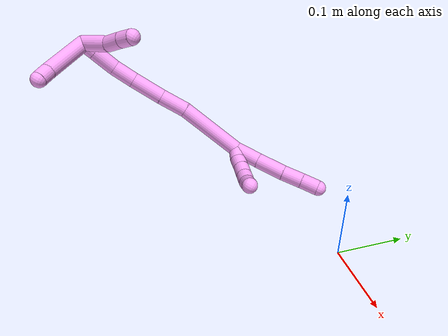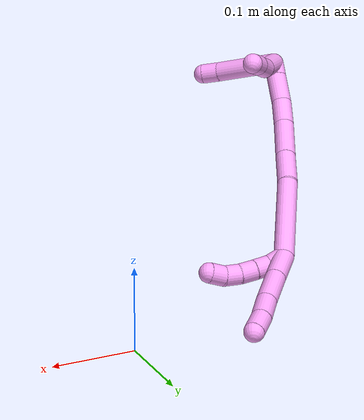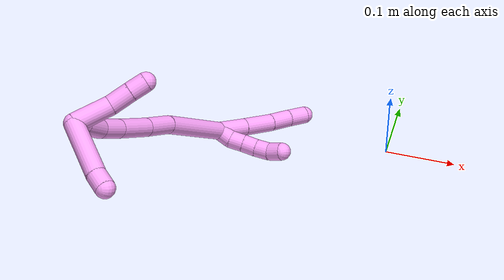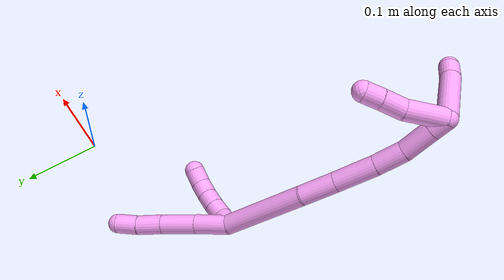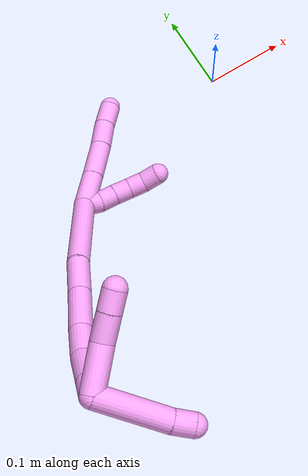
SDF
<sdf version="1.7">
 <world name="default">
  <model name="4">
   <static>0</static>
   <link name="4">
    <collision name="collision-cylinder-e_1_2_8">
     <pose>2.7e-05 0.005183 -0.02058 -2.89486 0.001255 -0.010118</pose>
     <geometry><cylinder><radius>0.0125</radius><length>0.042446</length></cylinder></geometry>
     <surface>
      <friction><ode><mu>1.16</mu><mu2>1.16</mu2><slip1>0</slip1><slip2>0</slip2></ode></friction>
      <contact><ode><kp>1e+06</kp><kd>1</kd><max_vel>0</max_vel><min_depth>0.001</min_depth></ode></contact>
     </surface>
    </collision>
    <visual name="visual-cylinder-e_1_2_8">
     <pose>2.7e-05 0.005183 -0.02058 -2.89486 0.001255 -0.010118</pose>
     <geometry><cylinder><radius>0.0125</radius><length>0.042446</length></cylinder></geometry>
     <material><ambient>1 0.65098 0.996078 1</ambient></material>
    </visual>
    <collision name="collision-cylinder-e_2_8_9">
     <pose>-0.000276 0.015852 -0.063471 -2.90055 -0.014315 0.118068</pose>
     <geometry><cylinder><radius>0.0125</radius><length>0.045955</length></cylinder></geometry>
     <surface>
      <friction><ode><mu>1.16</mu><mu2>1.16</mu2><slip1>0</slip1><slip2>0</slip2></ode></friction>
      <contact><ode><kp>1e+06</kp><kd>1</kd><max_vel>0</max_vel><min_depth>0.001</min_depth></ode></contact>
     </surface>
    </collision>
    <visual name="visual-cylinder-e_2_8_9">
     <pose>-0.000276 0.015852 -0.063471 -2.90055 -0.014315 0.118068</pose>
     <geometry><cylinder><radius>0.0125</radius><length>0.045955</length></cylinder></geometry>
     <material><ambient>1 0.65098 0.996078 1</ambient></material>
    </visual>
    <collision name="collision-cylinder-e_3_9_10">
     <pose>-0.001887 0.025049 -0.101867 -2.91473 -0.077554 0.656467</pose>
     <geometry><cylinder><radius>0.0125</radius><length>0.033116</length></cylinder></geometry>
     <surface>
      <friction><ode><mu>1.16</mu><mu2>1.16</mu2><slip1>0</slip1><slip2>0</slip2></ode></friction>
      <contact><ode><kp>1e+06</kp><kd>1</kd><max_vel>0</max_vel><min_depth>0.001</min_depth></ode></contact>
     </surface>
    </collision>
    <visual name="visual-cylinder-e_3_9_10">
     <pose>-0.001887 0.025049 -0.101867 -2.91473 -0.077554 0.656467</pose>
     <geometry><cylinder><radius>0.0125</radius><length>0.033116</length></cylinder></geometry>
     <material><ambient>1 0.65098 0.996078 1</ambient></material>
    </visual>
    <collision name="collision-cylinder-e_4_10_6">
     <pose>-0.00368 0.03339 -0.131412 -2.81043 -0.03578 0.213319</pose>
     <geometry><cylinder><radius>0.0125</radius><length>0.028483</length></cylinder></geometry>
     <surface>
      <friction><ode><mu>1.16</mu><mu2>1.16</mu2><slip1>0</slip1><slip2>0</slip2></ode></friction>
      <contact><ode><kp>1e+06</kp><kd>1</kd><max_vel>0</max_vel><min_depth>0.001</min_depth></ode></contact>
     </surface>
    </collision>
    <visual name="visual-cylinder-e_4_10_6">
     <pose>-0.00368 0.03339 -0.131412 -2.81043 -0.03578 0.213319</pose>
     <geometry><cylinder><radius>0.0125</radius><length>0.028483</length></cylinder></geometry>
     <material><ambient>1 0.65098 0.996078 1</ambient></material>
    </visual>
    <collision name="collision-cylinder-e_1_2_11">
     <pose>0.007597 0.004076 -0.005067 -2.46426 0.862819 -1.8353</pose>
     <geometry><cylinder><radius>0.0125</radius><length>0.02</length></cylinder></geometry>
     <surface>
      <friction><ode><mu>1.16</mu><mu2>1.16</mu2><slip1>0</slip1><slip2>0</slip2></ode></friction>
      <contact><ode><kp>1e+06</kp><kd>1</kd><max_vel>0</max_vel><min_depth>0.001</min_depth></ode></contact>
     </surface>
    </collision>
    <visual name="visual-cylinder-e_1_2_11">
     <pose>0.007597 0.004076 -0.005067 -2.46426 0.862819 -1.8353</pose>
     <geometry><cylinder><radius>0.0125</radius><length>0.02</length></cylinder></geometry>
     <material><ambient>1 0.65098 0.996078 1</ambient></material>
    </visual>
    <collision name="collision-cylinder-e_2_11_12">
     <pose>0.020565 0.014797 -0.015328 -2.2341 0.567079 -1.07716</pose>
     <geometry><cylinder><radius>0.0125</radius><length>0.02</length></cylinder></geometry>
     <surface>
      <friction><ode><mu>1.16</mu><mu2>1.16</mu2><slip1>0</slip1><slip2>0</slip2></ode></friction>
      <contact><ode><kp>1e+06</kp><kd>1</kd><max_vel>0</max_vel><min_depth>0.001</min_depth></ode></contact>
     </surface>
    </collision>
    <visual name="visual-cylinder-e_2_11_12">
     <pose>0.020565 0.014797 -0.015328 -2.2341 0.567079 -1.07716</pose>
     <geometry><cylinder><radius>0.0125</radius><length>0.02</length></cylinder></geometry>
     <material><ambient>1 0.65098 0.996078 1</ambient></material>
    </visual>
    <collision name="collision-cylinder-e_3_12_13">
     <pose>0.031581 0.028203 -0.025262 -2.18238 0.599649 -1.07255</pose>
     <geometry><cylinder><radius>0.0125</radius><length>0.02</length></cylinder></geometry>
     <surface>
      <friction><ode><mu>1.16</mu><mu2>1.16</mu2><slip1>0</slip1><slip2>0</slip2></ode></friction>
      <contact><ode><kp>1e+06</kp><kd>1</kd><max_vel>0</max_vel><min_depth>0.001</min_depth></ode></contact>
     </surface>
    </collision>
    <visual name="visual-cylinder-e_3_12_13">
     <pose>0.031581 0.028203 -0.025262 -2.18238 0.599649 -1.07255</pose>
     <geometry><cylinder><radius>0.0125</radius><length>0.02</length></cylinder></geometry>
     <material><ambient>1 0.65098 0.996078 1</ambient></material>
    </visual>
    <collision name="collision-cylinder-e_4_13_14">
     <pose>0.042199 0.042729 -0.033864 -2.03223 0.520747 -0.81222</pose>
     <geometry><cylinder><radius>0.0125</radius><length>0.02</length></cylinder></geometry>
     <surface>
      <friction><ode><mu>1.16</mu><mu2>1.16</mu2><slip1>0</slip1><slip2>0</slip2></ode></friction>
      <contact><ode><kp>1e+06</kp><kd>1</kd><max_vel>0</max_vel><min_depth>0.001</min_depth></ode></contact>
     </surface>
    </collision>
    <visual name="visual-cylinder-e_4_13_14">
     <pose>0.042199 0.042729 -0.033864 -2.03223 0.520747 -0.81222</pose>
     <geometry><cylinder><radius>0.0125</radius><length>0.02</length></cylinder></geometry>
     <material><ambient>1 0.65098 0.996078 1</ambient></material>
    </visual>
    <collision name="collision-cylinder-e_5_14_5">
     <pose>0.049772 0.059895 -0.039942 -1.80231 0.262769 -0.33079</pose>
     <geometry><cylinder><radius>0.0125</radius><length>0.02</length></cylinder></geometry>
     <surface>
      <friction><ode><mu>1.16</mu><mu2>1.16</mu2><slip1>0</slip1><slip2>0</slip2></ode></friction>
      <contact><ode><kp>1e+06</kp><kd>1</kd><max_vel>0</max_vel><min_depth>0.001</min_depth></ode></contact>
     </surface>
    </collision>
    <visual name="visual-cylinder-e_5_14_5">
     <pose>0.049772 0.059895 -0.039942 -1.80231 0.262769 -0.33079</pose>
     <geometry><cylinder><radius>0.0125</radius><length>0.02</length></cylinder></geometry>
     <material><ambient>1 0.65098 0.996078 1</ambient></material>
    </visual>
    <collision name="collision-cylinder-e_1_2_15">
     <pose>-0.005922 0.007623 0.05306 -0.142684 -0.110027 0.007871</pose>
     <geometry><cylinder><radius>0.0125</radius><length>0.107861</length></cylinder></geometry>
     <surface>
      <friction><ode><mu>1.16</mu><mu2>1.16</mu2><slip1>0</slip1><slip2>0</slip2></ode></friction>
      <contact><ode><kp>1e+06</kp><kd>1</kd><max_vel>0</max_vel><min_depth>0.001</min_depth></ode></contact>
     </surface>
    </collision>
    <visual name="visual-cylinder-e_1_2_15">
     <pose>-0.005922 0.007623 0.05306 -0.142684 -0.110027 0.007871</pose>
     <geometry><cylinder><radius>0.0125</radius><length>0.107861</length></cylinder></geometry>
     <material><ambient>1 0.65098 0.996078 1</ambient></material>
    </visual>
    <collision name="collision-cylinder-e_2_15_16">
     <pose>-0.010768 0.017857 0.12814 -0.118058 0.048457 -0.002864</pose>
     <geometry><cylinder><radius>0.0125</radius><length>0.044403</length></cylinder></geometry>
     <surface>
      <friction><ode><mu>1.16</mu><mu2>1.16</mu2><slip1>0</slip1><slip2>0</slip2></ode></friction>
      <contact><ode><kp>1e+06</kp><kd>1</kd><max_vel>0</max_vel><min_depth>0.001</min_depth></ode></contact>
     </surface>
    </collision>
    <visual name="visual-cylinder-e_2_15_16">
     <pose>-0.010768 0.017857 0.12814 -0.118058 0.048457 -0.002864</pose>
     <geometry><cylinder><radius>0.0125</radius><length>0.044403</length></cylinder></geometry>
     <material><ambient>1 0.65098 0.996078 1</ambient></material>
    </visual>
    <collision name="collision-cylinder-e_3_16_17">
     <pose>-0.009463 0.024104 0.175829 -0.140678 0.008881 -0.000626</pose>
     <geometry><cylinder><radius>0.0125</radius><length>0.05185</length></cylinder></geometry>
     <surface>
      <friction><ode><mu>1.16</mu><mu2>1.16</mu2><slip1>0</slip1><slip2>0</slip2></ode></friction>
      <contact><ode><kp>1e+06</kp><kd>1</kd><max_vel>0</max_vel><min_depth>0.001</min_depth></ode></contact>
     </surface>
    </collision>
    <visual name="visual-cylinder-e_3_16_17">
     <pose>-0.009463 0.024104 0.175829 -0.140678 0.008881 -0.000626</pose>
     <geometry><cylinder><radius>0.0125</radius><length>0.05185</length></cylinder></geometry>
     <material><ambient>1 0.65098 0.996078 1</ambient></material>
    </visual>
    <collision name="collision-cylinder-e_4_17_18">
     <pose>-0.009357 0.031534 0.219216 -0.210997 -0.006873 0.000728</pose>
     <geometry><cylinder><radius>0.0125</radius><length>0.036243</length></cylinder></geometry>
     <surface>
      <friction><ode><mu>1.16</mu><mu2>1.16</mu2><slip1>0</slip1><slip2>0</slip2></ode></friction>
      <contact><ode><kp>1e+06</kp><kd>1</kd><max_vel>0</max_vel><min_depth>0.001</min_depth></ode></contact>
     </surface>
    </collision>
    <visual name="visual-cylinder-e_4_17_18">
     <pose>-0.009357 0.031534 0.219216 -0.210997 -0.006873 0.000728</pose>
     <geometry><cylinder><radius>0.0125</radius><length>0.036243</length></cylinder></geometry>
     <material><ambient>1 0.65098 0.996078 1</ambient></material>
    </visual>
    <collision name="collision-cylinder-e_5_18_19">
     <pose>-0.010815 0.042907 0.254609 -0.405026 -0.069213 0.014217</pose>
     <geometry><cylinder><radius>0.0125</radius><length>0.038553</length></cylinder></geometry>
     <surface>
      <friction><ode><mu>1.16</mu><mu2>1.16</mu2><slip1>0</slip1><slip2>0</slip2></ode></friction>
      <contact><ode><kp>1e+06</kp><kd>1</kd><max_vel>0</max_vel><min_depth>0.001</min_depth></ode></contact>
     </surface>
    </collision>
    <visual name="visual-cylinder-e_5_18_19">
     <pose>-0.010815 0.042907 0.254609 -0.405026 -0.069213 0.014217</pose>
     <geometry><cylinder><radius>0.0125</radius><length>0.038553</length></cylinder></geometry>
     <material><ambient>1 0.65098 0.996078 1</ambient></material>
    </visual>
    <collision name="collision-cylinder-e_6_19_1">
     <pose>-0.012875 0.054495 0.282009 -0.391174 -0.069009 0.013677</pose>
     <geometry><cylinder><radius>0.0125</radius><length>0.021091</length></cylinder></geometry>
     <surface>
      <friction><ode><mu>1.16</mu><mu2>1.16</mu2><slip1>0</slip1><slip2>0</slip2></ode></friction>
      <contact><ode><kp>1e+06</kp><kd>1</kd><max_vel>0</max_vel><min_depth>0.001</min_depth></ode></contact>
     </surface>
    </collision>
    <visual name="visual-cylinder-e_6_19_1">
     <pose>-0.012875 0.054495 0.282009 -0.391174 -0.069009 0.013677</pose>
     <geometry><cylinder><radius>0.0125</radius><length>0.021091</length></cylinder></geometry>
     <material><ambient>1 0.65098 0.996078 1</ambient></material>
    </visual>
    <collision name="collision-cylinder-e_1_1_20">
     <pose>-0.019963 0.070859 0.271671 -2.58973 -0.263685 0.875997</pose>
     <geometry><cylinder><radius>0.0125</radius><length>0.048812</length></cylinder></geometry>
     <surface>
      <friction><ode><mu>1.16</mu><mu2>1.16</mu2><slip1>0</slip1><slip2>0</slip2></ode></friction>
      <contact><ode><kp>1e+06</kp><kd>1</kd><max_vel>0</max_vel><min_depth>0.001</min_depth></ode></contact>
     </surface>
    </collision>
    <visual name="visual-cylinder-e_1_1_20">
     <pose>-0.019963 0.070859 0.271671 -2.58973 -0.263685 0.875997</pose>
     <geometry><cylinder><radius>0.0125</radius><length>0.048812</length></cylinder></geometry>
     <material><ambient>1 0.65098 0.996078 1</ambient></material>
    </visual>
    <collision name="collision-cylinder-e_2_20_21">
     <pose>-0.031529 0.093004 0.242259 -2.33298 -0.367085 0.818667</pose>
     <geometry><cylinder><radius>0.0125</radius><length>0.029006</length></cylinder></geometry>
     <surface>
      <friction><ode><mu>1.16</mu><mu2>1.16</mu2><slip1>0</slip1><slip2>0</slip2></ode></friction>
      <contact><ode><kp>1e+06</kp><kd>1</kd><max_vel>0</max_vel><min_depth>0.001</min_depth></ode></contact>
     </surface>
    </collision>
    <visual name="visual-cylinder-e_2_20_21">
     <pose>-0.031529 0.093004 0.242259 -2.33298 -0.367085 0.818667</pose>
     <geometry><cylinder><radius>0.0125</radius><length>0.029006</length></cylinder></geometry>
     <material><ambient>1 0.65098 0.996078 1</ambient></material>
    </visual>
    <collision name="collision-cylinder-e_3_21_4">
     <pose>-0.040474 0.110092 0.225443 -2.36787 -0.34394 0.806009</pose>
     <geometry><cylinder><radius>0.0125</radius><length>0.022183</length></cylinder></geometry>
     <surface>
      <friction><ode><mu>1.16</mu><mu2>1.16</mu2><slip1>0</slip1><slip2>0</slip2></ode></friction>
      <contact><ode><kp>1e+06</kp><kd>1</kd><max_vel>0</max_vel><min_depth>0.001</min_depth></ode></contact>
     </surface>
    </collision>
    <visual name="visual-cylinder-e_3_21_4">
     <pose>-0.040474 0.110092 0.225443 -2.36787 -0.34394 0.806009</pose>
     <geometry><cylinder><radius>0.0125</radius><length>0.022183</length></cylinder></geometry>
     <material><ambient>1 0.65098 0.996078 1</ambient></material>
    </visual>
    <collision name="collision-cylinder-e_1_1_22">
     <pose>0.021559 0.074853 0.296529 -1.2855 1.11964 -0.87755</pose>
     <geometry><cylinder><radius>0.0125</radius><length>0.078141</length></cylinder></geometry>
     <surface>
      <friction><ode><mu>1.16</mu><mu2>1.16</mu2><slip1>0</slip1><slip2>0</slip2></ode></friction>
      <contact><ode><kp>1e+06</kp><kd>1</kd><max_vel>0</max_vel><min_depth>0.001</min_depth></ode></contact>
     </surface>
    </collision>
    <visual name="visual-cylinder-e_1_1_22">
     <pose>0.021559 0.074853 0.296529 -1.2855 1.11964 -0.87755</pose>
     <geometry><cylinder><radius>0.0125</radius><length>0.078141</length></cylinder></geometry>
     <material><ambient>1 0.65098 0.996078 1</ambient></material>
    </visual>
    <collision name="collision-cylinder-e_2_22_3">
     <pose>0.066069 0.096849 0.301691 -1.50599 1.02629 -0.971768</pose>
     <geometry><cylinder><radius>0.0125</radius><length>0.021859</length></cylinder></geometry>
     <surface>
      <friction><ode><mu>1.16</mu><mu2>1.16</mu2><slip1>0</slip1><slip2>0</slip2></ode></friction>
      <contact><ode><kp>1e+06</kp><kd>1</kd><max_vel>0</max_vel><min_depth>0.001</min_depth></ode></contact>
     </surface>
    </collision>
    <visual name="visual-cylinder-e_2_22_3">
     <pose>0.066069 0.096849 0.301691 -1.50599 1.02629 -0.971768</pose>
     <geometry><cylinder><radius>0.0125</radius><length>0.021859</length></cylinder></geometry>
     <material><ambient>1 0.65098 0.996078 1</ambient></material>
    </visual>
    <collision name="collision-sphere-3">
     <pose>0.075418 0.102498 0.302057 0 -0 0</pose>
     <geometry><sphere><radius>0.0125</radius></sphere></geometry>
     <surface>
      <friction><ode><mu>1.16</mu><mu2>1.16</mu2><slip1>0</slip1><slip2>0</slip2></ode></friction>
      <contact><ode><kp>1e+06</kp><kd>1</kd><max_vel>0</max_vel><min_depth>0.001</min_depth></ode></contact>
     </surface>
    </collision>
    <visual name="visual-sphere-3">
     <pose>0.075418 0.102498 0.302057 0 -0 0</pose>
     <geometry><sphere><radius>0.0125</radius></sphere></geometry>
     <material><ambient>1 0.65098 0.996078 1</ambient></material>
    </visual>
    <collision name="collision-sphere-22">
     <pose>0.05672 0.091199 0.301324 0 -0 0</pose>
     <geometry><sphere><radius>0.0125</radius></sphere></geometry>
     <surface>
      <friction><ode><mu>1.16</mu><mu2>1.16</mu2><slip1>0</slip1><slip2>0</slip2></ode></friction>
      <contact><ode><kp>1e+06</kp><kd>1</kd><max_vel>0</max_vel><min_depth>0.001</min_depth></ode></contact>
     </surface>
    </collision>
    <visual name="visual-sphere-22">
     <pose>0.05672 0.091199 0.301324 0 -0 0</pose>
     <geometry><sphere><radius>0.0125</radius></sphere></geometry>
     <material><ambient>1 0.65098 0.996078 1</ambient></material>
    </visual>
    <collision name="collision-sphere-4">
     <pose>-0.044214 0.117389 0.217974 0 -0 0</pose>
     <geometry><sphere><radius>0.0125</radius></sphere></geometry>
     <surface>
      <friction><ode><mu>1.16</mu><mu2>1.16</mu2><slip1>0</slip1><slip2>0</slip2></ode></friction>
      <contact><ode><kp>1e+06</kp><kd>1</kd><max_vel>0</max_vel><min_depth>0.001</min_depth></ode></contact>
     </surface>
    </collision>
    <visual name="visual-sphere-4">
     <pose>-0.044214 0.117389 0.217974 0 -0 0</pose>
     <geometry><sphere><radius>0.0125</radius></sphere></geometry>
     <material><ambient>1 0.65098 0.996078 1</ambient></material>
    </visual>
    <collision name="collision-sphere-21">
     <pose>-0.036734 0.102796 0.232912 0 -0 0</pose>
     <geometry><sphere><radius>0.0125</radius></sphere></geometry>
     <surface>
      <friction><ode><mu>1.16</mu><mu2>1.16</mu2><slip1>0</slip1><slip2>0</slip2></ode></friction>
      <contact><ode><kp>1e+06</kp><kd>1</kd><max_vel>0</max_vel><min_depth>0.001</min_depth></ode></contact>
     </surface>
    </collision>
    <visual name="visual-sphere-21">
     <pose>-0.036734 0.102796 0.232912 0 -0 0</pose>
     <geometry><sphere><radius>0.0125</radius></sphere></geometry>
     <material><ambient>1 0.65098 0.996078 1</ambient></material>
    </visual>
    <collision name="collision-sphere-20">
     <pose>-0.026324 0.083213 0.251606 0 -0 0</pose>
     <geometry><sphere><radius>0.0125</radius></sphere></geometry>
     <surface>
      <friction><ode><mu>1.16</mu><mu2>1.16</mu2><slip1>0</slip1><slip2>0</slip2></ode></friction>
      <contact><ode><kp>1e+06</kp><kd>1</kd><max_vel>0</max_vel><min_depth>0.001</min_depth></ode></contact>
     </surface>
    </collision>
    <visual name="visual-sphere-20">
     <pose>-0.026324 0.083213 0.251606 0 -0 0</pose>
     <geometry><sphere><radius>0.0125</radius></sphere></geometry>
     <material><ambient>1 0.65098 0.996078 1</ambient></material>
    </visual>
    <collision name="collision-sphere-11">
     <pose>0.015194 0.008151 -0.010135 0 -0 0</pose>
     <geometry><sphere><radius>0.0125</radius></sphere></geometry>
     <surface>
      <friction><ode><mu>1.16</mu><mu2>1.16</mu2><slip1>0</slip1><slip2>0</slip2></ode></friction>
      <contact><ode><kp>1e+06</kp><kd>1</kd><max_vel>0</max_vel><min_depth>0.001</min_depth></ode></contact>
     </surface>
    </collision>
    <visual name="visual-sphere-11">
     <pose>0.015194 0.008151 -0.010135 0 -0 0</pose>
     <geometry><sphere><radius>0.0125</radius></sphere></geometry>
     <material><ambient>1 0.65098 0.996078 1</ambient></material>
    </visual>
    <collision name="collision-sphere-6">
     <pose>-0.004189 0.038018 -0.144871 0 -0 0</pose>
     <geometry><sphere><radius>0.0125</radius></sphere></geometry>
     <surface>
      <friction><ode><mu>1.16</mu><mu2>1.16</mu2><slip1>0</slip1><slip2>0</slip2></ode></friction>
      <contact><ode><kp>1e+06</kp><kd>1</kd><max_vel>0</max_vel><min_depth>0.001</min_depth></ode></contact>
     </surface>
    </collision>
    <visual name="visual-sphere-6">
     <pose>-0.004189 0.038018 -0.144871 0 -0 0</pose>
     <geometry><sphere><radius>0.0125</radius></sphere></geometry>
     <material><ambient>1 0.65098 0.996078 1</ambient></material>
    </visual>
    <collision name="collision-sphere-10">
     <pose>-0.00317 0.028762 -0.117953 0 -0 0</pose>
     <geometry><sphere><radius>0.0125</radius></sphere></geometry>
     <surface>
      <friction><ode><mu>1.16</mu><mu2>1.16</mu2><slip1>0</slip1><slip2>0</slip2></ode></friction>
      <contact><ode><kp>1e+06</kp><kd>1</kd><max_vel>0</max_vel><min_depth>0.001</min_depth></ode></contact>
     </surface>
    </collision>
    <visual name="visual-sphere-10">
     <pose>-0.00317 0.028762 -0.117953 0 -0 0</pose>
     <geometry><sphere><radius>0.0125</radius></sphere></geometry>
     <material><ambient>1 0.65098 0.996078 1</ambient></material>
    </visual>
    <collision name="collision-sphere-9">
     <pose>-0.000605 0.021336 -0.085782 0 -0 0</pose>
     <geometry><sphere><radius>0.0125</radius></sphere></geometry>
     <surface>
      <friction><ode><mu>1.16</mu><mu2>1.16</mu2><slip1>0</slip1><slip2>0</slip2></ode></friction>
      <contact><ode><kp>1e+06</kp><kd>1</kd><max_vel>0</max_vel><min_depth>0.001</min_depth></ode></contact>
     </surface>
    </collision>
    <visual name="visual-sphere-9">
     <pose>-0.000605 0.021336 -0.085782 0 -0 0</pose>
     <geometry><sphere><radius>0.0125</radius></sphere></geometry>
     <material><ambient>1 0.65098 0.996078 1</ambient></material>
    </visual>
    <collision name="collision-sphere-2">
     <geometry><sphere><radius>0.0125</radius></sphere></geometry>
     <surface>
      <friction><ode><mu>1.16</mu><mu2>1.16</mu2><slip1>0</slip1><slip2>0</slip2></ode></friction>
      <contact><ode><kp>1e+06</kp><kd>1</kd><max_vel>0</max_vel><min_depth>0.001</min_depth></ode></contact>
     </surface>
    </collision>
    <visual name="visual-sphere-2">
     <geometry><sphere><radius>0.0125</radius></sphere></geometry>
     <material><ambient>1 0.65098 0.996078 1</ambient></material>
    </visual>
    <collision name="collision-sphere-19">
     <pose>-0.012148 0.050484 0.272284 0 -0 0</pose>
     <geometry><sphere><radius>0.0125</radius></sphere></geometry>
     <surface>
      <friction><ode><mu>1.16</mu><mu2>1.16</mu2><slip1>0</slip1><slip2>0</slip2></ode></friction>
      <contact><ode><kp>1e+06</kp><kd>1</kd><max_vel>0</max_vel><min_depth>0.001</min_depth></ode></contact>
     </surface>
    </collision>
    <visual name="visual-sphere-19">
     <pose>-0.012148 0.050484 0.272284 0 -0 0</pose>
     <geometry><sphere><radius>0.0125</radius></sphere></geometry>
     <material><ambient>1 0.65098 0.996078 1</ambient></material>
    </visual>
    <collision name="collision-sphere-8">
     <pose>5.3e-05 0.010367 -0.04116 0 -0 0</pose>
     <geometry><sphere><radius>0.0125</radius></sphere></geometry>
     <surface>
      <friction><ode><mu>1.16</mu><mu2>1.16</mu2><slip1>0</slip1><slip2>0</slip2></ode></friction>
      <contact><ode><kp>1e+06</kp><kd>1</kd><max_vel>0</max_vel><min_depth>0.001</min_depth></ode></contact>
     </surface>
    </collision>
    <visual name="visual-sphere-8">
     <pose>5.3e-05 0.010367 -0.04116 0 -0 0</pose>
     <geometry><sphere><radius>0.0125</radius></sphere></geometry>
     <material><ambient>1 0.65098 0.996078 1</ambient></material>
    </visual>
    <collision name="collision-sphere-12">
     <pose>0.025937 0.021444 -0.020522 0 -0 0</pose>
     <geometry><sphere><radius>0.0125</radius></sphere></geometry>
     <surface>
      <friction><ode><mu>1.16</mu><mu2>1.16</mu2><slip1>0</slip1><slip2>0</slip2></ode></friction>
      <contact><ode><kp>1e+06</kp><kd>1</kd><max_vel>0</max_vel><min_depth>0.001</min_depth></ode></contact>
     </surface>
    </collision>
    <visual name="visual-sphere-12">
     <pose>0.025937 0.021444 -0.020522 0 -0 0</pose>
     <geometry><sphere><radius>0.0125</radius></sphere></geometry>
     <material><ambient>1 0.65098 0.996078 1</ambient></material>
    </visual>
    <collision name="collision-sphere-13">
     <pose>0.037224 0.034962 -0.030002 0 -0 0</pose>
     <geometry><sphere><radius>0.0125</radius></sphere></geometry>
     <surface>
      <friction><ode><mu>1.16</mu><mu2>1.16</mu2><slip1>0</slip1><slip2>0</slip2></ode></friction>
      <contact><ode><kp>1e+06</kp><kd>1</kd><max_vel>0</max_vel><min_depth>0.001</min_depth></ode></contact>
     </surface>
    </collision>
    <visual name="visual-sphere-13">
     <pose>0.037224 0.034962 -0.030002 0 -0 0</pose>
     <geometry><sphere><radius>0.0125</radius></sphere></geometry>
     <material><ambient>1 0.65098 0.996078 1</ambient></material>
    </visual>
    <collision name="collision-sphere-14">
     <pose>0.047175 0.050496 -0.037726 0 -0 0</pose>
     <geometry><sphere><radius>0.0125</radius></sphere></geometry>
     <surface>
      <friction><ode><mu>1.16</mu><mu2>1.16</mu2><slip1>0</slip1><slip2>0</slip2></ode></friction>
      <contact><ode><kp>1e+06</kp><kd>1</kd><max_vel>0</max_vel><min_depth>0.001</min_depth></ode></contact>
     </surface>
    </collision>
    <visual name="visual-sphere-14">
     <pose>0.047175 0.050496 -0.037726 0 -0 0</pose>
     <geometry><sphere><radius>0.0125</radius></sphere></geometry>
     <material><ambient>1 0.65098 0.996078 1</ambient></material>
    </visual>
    <collision name="collision-sphere-5">
     <pose>0.05237 0.069294 -0.042157 0 -0 0</pose>
     <geometry><sphere><radius>0.0125</radius></sphere></geometry>
     <surface>
      <friction><ode><mu>1.16</mu><mu2>1.16</mu2><slip1>0</slip1><slip2>0</slip2></ode></friction>
      <contact><ode><kp>1e+06</kp><kd>1</kd><max_vel>0</max_vel><min_depth>0.001</min_depth></ode></contact>
     </surface>
    </collision>
    <visual name="visual-sphere-5">
     <pose>0.05237 0.069294 -0.042157 0 -0 0</pose>
     <geometry><sphere><radius>0.0125</radius></sphere></geometry>
     <material><ambient>1 0.65098 0.996078 1</ambient></material>
    </visual>
    <collision name="collision-sphere-15">
     <pose>-0.011844 0.015245 0.106119 0 -0 0</pose>
     <geometry><sphere><radius>0.0125</radius></sphere></geometry>
     <surface>
      <friction><ode><mu>1.16</mu><mu2>1.16</mu2><slip1>0</slip1><slip2>0</slip2></ode></friction>
      <contact><ode><kp>1e+06</kp><kd>1</kd><max_vel>0</max_vel><min_depth>0.001</min_depth></ode></contact>
     </surface>
    </collision>
    <visual name="visual-sphere-15">
     <pose>-0.011844 0.015245 0.106119 0 -0 0</pose>
     <geometry><sphere><radius>0.0125</radius></sphere></geometry>
     <material><ambient>1 0.65098 0.996078 1</ambient></material>
    </visual>
    <collision name="collision-sphere-16">
     <pose>-0.009693 0.020469 0.150161 0 -0 0</pose>
     <geometry><sphere><radius>0.0125</radius></sphere></geometry>
     <surface>
      <friction><ode><mu>1.16</mu><mu2>1.16</mu2><slip1>0</slip1><slip2>0</slip2></ode></friction>
      <contact><ode><kp>1e+06</kp><kd>1</kd><max_vel>0</max_vel><min_depth>0.001</min_depth></ode></contact>
     </surface>
    </collision>
    <visual name="visual-sphere-16">
     <pose>-0.009693 0.020469 0.150161 0 -0 0</pose>
     <geometry><sphere><radius>0.0125</radius></sphere></geometry>
     <material><ambient>1 0.65098 0.996078 1</ambient></material>
    </visual>
    <collision name="collision-sphere-17">
     <pose>-0.009232 0.027739 0.201496 0 -0 0</pose>
     <geometry><sphere><radius>0.0125</radius></sphere></geometry>
     <surface>
      <friction><ode><mu>1.16</mu><mu2>1.16</mu2><slip1>0</slip1><slip2>0</slip2></ode></friction>
      <contact><ode><kp>1e+06</kp><kd>1</kd><max_vel>0</max_vel><min_depth>0.001</min_depth></ode></contact>
     </surface>
    </collision>
    <visual name="visual-sphere-17">
     <pose>-0.009232 0.027739 0.201496 0 -0 0</pose>
     <geometry><sphere><radius>0.0125</radius></sphere></geometry>
     <material><ambient>1 0.65098 0.996078 1</ambient></material>
    </visual>
    <collision name="collision-sphere-18">
     <pose>-0.009482 0.035329 0.236935 0 -0 0</pose>
     <geometry><sphere><radius>0.0125</radius></sphere></geometry>
     <surface>
      <friction><ode><mu>1.16</mu><mu2>1.16</mu2><slip1>0</slip1><slip2>0</slip2></ode></friction>
      <contact><ode><kp>1e+06</kp><kd>1</kd><max_vel>0</max_vel><min_depth>0.001</min_depth></ode></contact>
     </surface>
    </collision>
    <visual name="visual-sphere-18">
     <pose>-0.009482 0.035329 0.236935 0 -0 0</pose>
     <geometry><sphere><radius>0.0125</radius></sphere></geometry>
     <material><ambient>1 0.65098 0.996078 1</ambient></material>
    </visual>
    <collision name="collision-sphere-1">
     <pose>-0.013602 0.058506 0.291735 0 -0 0</pose>
     <geometry><sphere><radius>0.0125</radius></sphere></geometry>
     <surface>
      <friction><ode><mu>1.16</mu><mu2>1.16</mu2><slip1>0</slip1><slip2>0</slip2></ode></friction>
      <contact><ode><kp>1e+06</kp><kd>1</kd><max_vel>0</max_vel><min_depth>0.001</min_depth></ode></contact>
     </surface>
    </collision>
    <visual name="visual-sphere-1">
     <pose>-0.013602 0.058506 0.291735 0 -0 0</pose>
     <geometry><sphere><radius>0.0125</radius></sphere></geometry>
     <material><ambient>1 0.65098 0.996078 1</ambient></material>
    </visual>
    <inertial>
     <pose>0.00075 0.038799 0.114662 0 -0 0</pose>
     <mass>0.75</mass>
     <inertia>
      <ixx>0.000199</ixx>
      <ixy>0</ixy>
      <ixz>0</ixz>
      <iyy>0.00017</iyy>
      <iyz>0</iyz>
      <izz>-8.5e-05</izz>
     </inertia>
    </inertial>
   </link>
   <pose>-0.229733 -0.075733 0.047499 0.971144 0.69017 -0.968884</pose>
  </model>
 </world>
</sdf>
